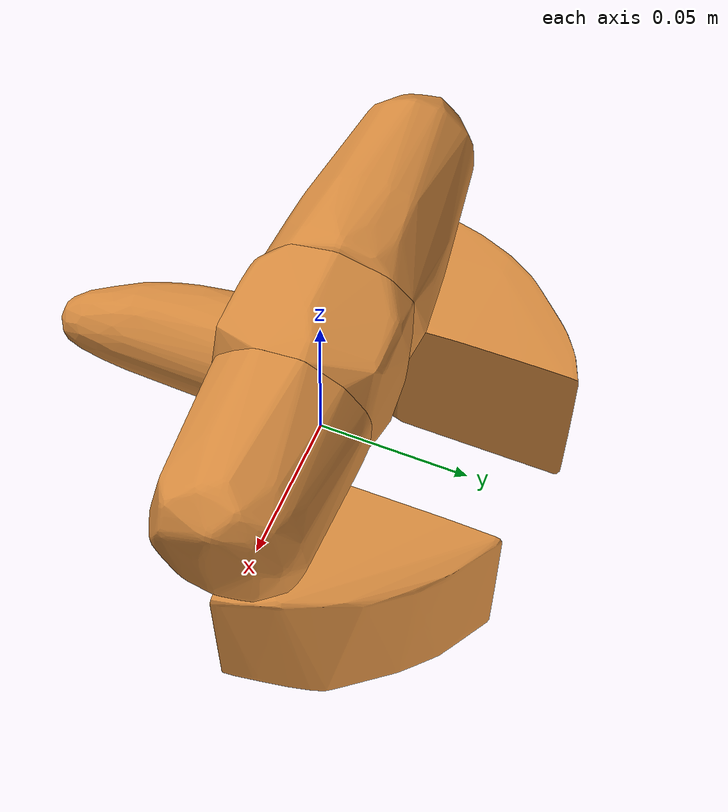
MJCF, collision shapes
<mujoco model="power_drill">
  <compiler angle="radian"/>

  <asset>
    <material name="object" rgba="0.85 0.55 0.25 1"/>
    <mesh name="object_visual_mesh" file="source/top_watertight_tiny.obj"/>
    <mesh name="object_collision_mesh_000" file="collision/hull_000.obj"/>
    <mesh name="object_collision_mesh_001" file="collision/hull_001.obj"/>
    <mesh name="object_collision_mesh_002" file="collision/hull_002.obj"/>
    <mesh name="object_collision_mesh_003" file="collision/hull_003.obj"/>
    <mesh name="object_collision_mesh_004" file="collision/hull_004.obj"/>
    <mesh name="object_collision_mesh_005" file="collision/hull_005.obj"/>
    <mesh name="object_collision_mesh_006" file="collision/hull_006.obj"/>
  </asset>

  <worldbody>
    <body name="object">
      <inertial pos="0.00626493 -0.000269611 -0.0071581" quat="0.69267 -0.0664935 -0.0509456 0.716374" mass="0.24875" diaginertia="0.00132713 0.00100813 0.000384184"/>
      <joint name="object_joint" type="free" damping="1e-05 1e-05 1e-05"/>
      <geom name="object_visual" type="mesh" contype="0" conaffinity="0" mass="0" material="object" rgba="1 0.423529 0.0392157 1" mesh="object_visual_mesh"/>
      <geom name="object_collision" type="mesh" condim="6" friction="0.2" mass="0" material="object" mesh="object_collision_mesh_000"/>
      <geom name="object_collision_001" type="mesh" condim="6" friction="0.2" mass="0" material="object" mesh="object_collision_mesh_001"/>
      <geom name="object_collision_002" type="mesh" condim="6" friction="0.2" mass="0" material="object" mesh="object_collision_mesh_002"/>
      <geom name="object_collision_003" type="mesh" condim="6" friction="0.2" mass="0" material="object" mesh="object_collision_mesh_003"/>
      <geom name="object_collision_004" type="mesh" condim="6" friction="0.2" mass="0" material="object" mesh="object_collision_mesh_004"/>
      <geom name="object_collision_005" type="mesh" condim="6" friction="0.2" mass="0" material="object" mesh="object_collision_mesh_005"/>
      <geom name="object_collision_006" type="mesh" condim="6" friction="0.2" mass="0" material="object" mesh="object_collision_mesh_006"/>
    </body>
  </worldbody>
</mujoco>
